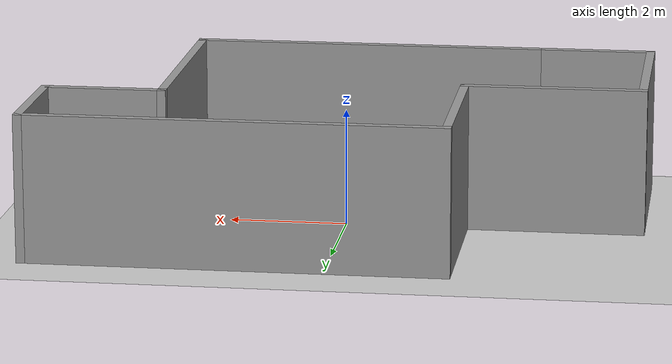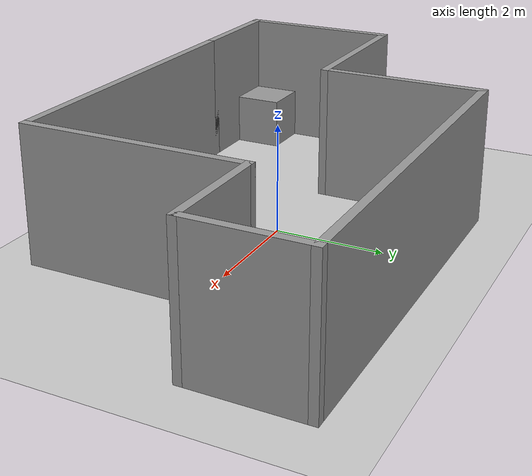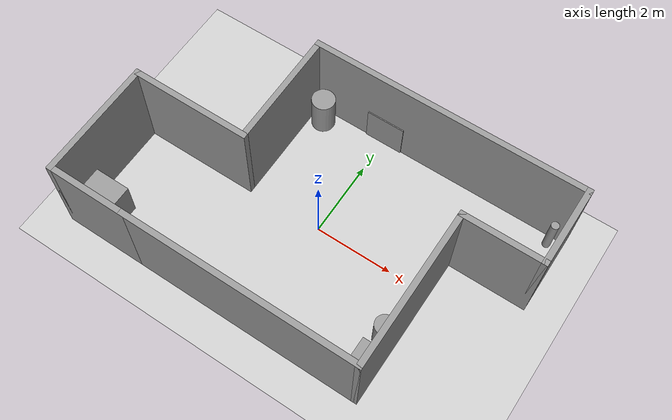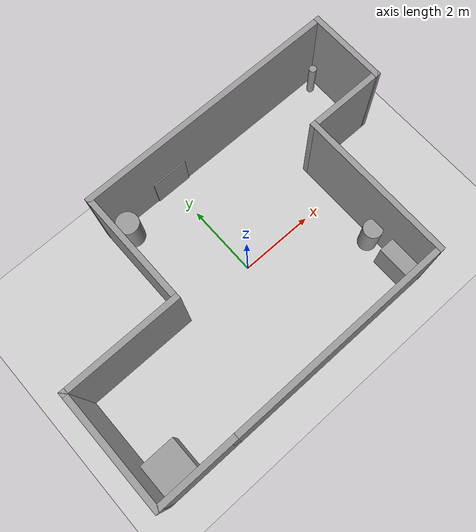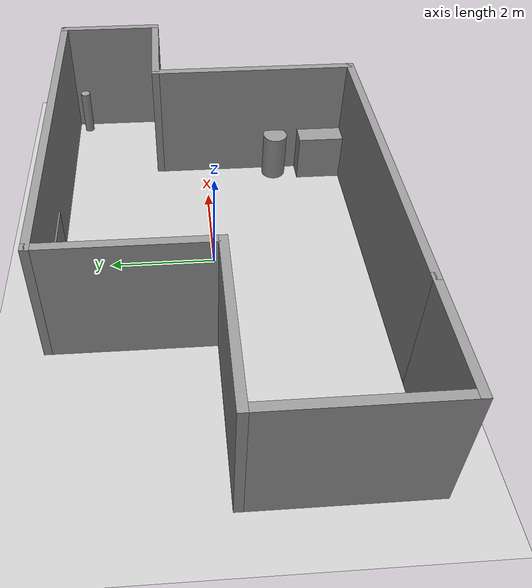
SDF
<sdf version="1.6">
 <world name="default">
  <light name="sun" type="directional">
   <pose>0 0 10 0 -0 0</pose>
   <diffuse>0.8 0.8 0.8 1</diffuse>
   <specular>0.2 0.2 0.2 1</specular>
   <attenuation>
    <range>1000</range>
    <constant>0.9</constant>
    <linear>0.01</linear>
    <quadratic>0.001</quadratic>
   </attenuation>
   <direction>-0.5 0.1 -0.9</direction>
  </light>
  <model name="ground_plane">
   <static>1</static>
   <link name="link">
    <collision name="collision">
     <geometry><plane><normal>0 0 1</normal><size>100 100</size></plane></geometry>
     <surface>
      <contact><collide_bitmask>65535</collide_bitmask></contact>
      <friction><ode><mu>100</mu><mu2>50</mu2></ode></friction>
     </surface>
    </collision>
    <visual name="visual">
     <cast_shadows>0</cast_shadows>
     <geometry><plane><normal>0 0 1</normal><size>100 100</size></plane></geometry>
     <material>
      <script><uri>file://media/materials/scripts/gazebo.material</uri><name>Gazebo/Grey</name></script>
     </material>
    </visual>
   </link>
  </model>
  <gravity>0 0 -9.8</gravity>
  <magnetic_field>6e-06 2.3e-05 -4.2e-05</magnetic_field>
  <atmosphere type="adiabatic"/>
  <physics name="default_physics" default="0" type="ode">
   <max_step_size>0.001</max_step_size>
   <real_time_factor>1</real_time_factor>
   <real_time_update_rate>1000</real_time_update_rate>
  </physics>
  <scene><ambient>0.4 0.4 0.4 1</ambient><background>0.7 0.7 0.7 1</background><shadows>1</shadows></scene>
  <spherical_coordinates>
   <surface_model>EARTH_WGS84</surface_model>
   <latitude_deg>0</latitude_deg>
   <longitude_deg>0</longitude_deg>
   <elevation>0</elevation>
   <heading_deg>0</heading_deg>
  </spherical_coordinates>
  <model name="detailed_room">
   <static>1</static>
   <link name="link_1">
    <pose>2.16564 -2.75019 0.071429 0 -0 0</pose>
    <inertial>
     <mass>1</mass>
     <inertia>
      <ixx>0.166667</ixx>
      <ixy>0</ixy>
      <ixz>0</ixz>
      <iyy>0.166667</iyy>
      <iyz>0</iyz>
      <izz>0.166667</izz>
     </inertia>
    </inertial>
    <visual name="visual">
     <geometry><box><size>0.5 1 1</size></box></geometry>
     <material>
      <lighting>1</lighting>
      <script><uri>file://media/materials/scripts/gazebo.material</uri><name>Gazebo/Grey</name></script>
      <shader type="pixel"><normal_map>__default__</normal_map></shader>
      <ambient>0.3 0.3 0.3 1</ambient>
      <diffuse>0.7 0.7 0.7 1</diffuse>
      <specular>0.01 0.01 0.01 1</specular>
      <emissive>0 0 0 1</emissive>
     </material>
    </visual>
    <collision name="collision">
     <geometry><box><size>0.5 1 1</size></box></geometry>
     <surface>
      <friction>
       <ode><mu>1</mu><mu2>1</mu2><fdir1>0 0 0</fdir1><slip1>0</slip1><slip2>0</slip2></ode>
       <torsional>
        <coefficient>1</coefficient>
        <patch_radius>0</patch_radius>
        <surface_radius>0</surface_radius>
        <use_patch_radius>1</use_patch_radius>
        <ode><slip>0</slip></ode>
       </torsional>
      </friction>
      <bounce><restitution_coefficient>0</restitution_coefficient><threshold>1e+06</threshold></bounce>
      <contact>
       <collide_without_contact>0</collide_without_contact>
       <collide_without_contact_bitmask>1</collide_without_contact_bitmask>
       <collide_bitmask>1</collide_bitmask>
       <ode>
        <soft_cfm>0</soft_cfm>
        <soft_erp>0.2</soft_erp>
        <kp>1e+13</kp>
        <kd>1</kd>
        <max_vel>0.01</max_vel>
        <min_depth>0</min_depth>
       </ode>
       <bullet>
        <split_impulse>1</split_impulse>
        <split_impulse_penetration_threshold>-0.01</split_impulse_penetration_threshold>
        <soft_cfm>0</soft_cfm>
        <soft_erp>0.2</soft_erp>
        <kp>1e+13</kp>
        <kd>1</kd>
       </bullet>
      </contact>
     </surface>
    </collision>
   </link>
   <link name="link_2">
    <pose>2.16564 -1.75019 0.071429 0 -0 0</pose>
    <inertial>
     <mass>1</mass>
     <inertia><ixx>0.145833</ixx><ixy>0</ixy><ixz>0</ixz><iyy>0.145833</iyy><iyz>0</iyz><izz>0.125</izz></inertia>
    </inertial>
    <visual name="visual">
     <geometry><cylinder><radius>0.25</radius><length>1</length></cylinder></geometry>
     <material>
      <lighting>1</lighting>
      <script><uri>file://media/materials/scripts/gazebo.material</uri><name>Gazebo/Grey</name></script>
      <shader type="pixel"><normal_map>__default__</normal_map></shader>
      <ambient>0.3 0.3 0.3 1</ambient>
      <diffuse>0.7 0.7 0.7 1</diffuse>
      <specular>0.01 0.01 0.01 1</specular>
      <emissive>0 0 0 1</emissive>
     </material>
    </visual>
    <collision name="collision">
     <geometry><cylinder><radius>0.25</radius><length>1</length></cylinder></geometry>
     <surface>
      <friction>
       <ode><mu>1</mu><mu2>1</mu2><fdir1>0 0 0</fdir1><slip1>0</slip1><slip2>0</slip2></ode>
       <torsional>
        <coefficient>1</coefficient>
        <patch_radius>0</patch_radius>
        <surface_radius>0</surface_radius>
        <use_patch_radius>1</use_patch_radius>
        <ode><slip>0</slip></ode>
       </torsional>
      </friction>
      <bounce><restitution_coefficient>0</restitution_coefficient><threshold>1e+06</threshold></bounce>
      <contact>
       <collide_without_contact>0</collide_without_contact>
       <collide_without_contact_bitmask>1</collide_without_contact_bitmask>
       <collide_bitmask>1</collide_bitmask>
       <ode>
        <soft_cfm>0</soft_cfm>
        <soft_erp>0.2</soft_erp>
        <kp>1e+13</kp>
        <kd>1</kd>
        <max_vel>0.01</max_vel>
        <min_depth>0</min_depth>
       </ode>
       <bullet>
        <split_impulse>1</split_impulse>
        <split_impulse_penetration_threshold>-0.01</split_impulse_penetration_threshold>
        <soft_cfm>0</soft_cfm>
        <soft_erp>0.2</soft_erp>
        <kp>1e+13</kp>
        <kd>1</kd>
       </bullet>
      </contact>
     </surface>
    </collision>
   </link>
   <link name="link_3">
    <pose>4.11564 2.44981 0.071429 0 -0 0</pose>
    <inertial>
     <mass>1</mass>
     <inertia><ixx>0.145833</ixx><ixy>0</ixy><ixz>0</ixz><iyy>0.145833</iyy><iyz>0</iyz><izz>0.125</izz></inertia>
    </inertial>
    <visual name="visual">
     <geometry><cylinder><radius>0.1</radius><length>1</length></cylinder></geometry>
     <material>
      <lighting>1</lighting>
      <script><uri>file://media/materials/scripts/gazebo.material</uri><name>Gazebo/Grey</name></script>
      <shader type="pixel"><normal_map>__default__</normal_map></shader>
      <ambient>0.3 0.3 0.3 1</ambient>
      <diffuse>0.7 0.7 0.7 1</diffuse>
      <specular>0.01 0.01 0.01 1</specular>
      <emissive>0 0 0 1</emissive>
     </material>
    </visual>
    <collision name="collision">
     <geometry><cylinder><radius>0.1</radius><length>1</length></cylinder></geometry>
     <surface>
      <friction>
       <ode><mu>1</mu><mu2>1</mu2><fdir1>0 0 0</fdir1><slip1>0</slip1><slip2>0</slip2></ode>
       <torsional>
        <coefficient>1</coefficient>
        <patch_radius>0</patch_radius>
        <surface_radius>0</surface_radius>
        <use_patch_radius>1</use_patch_radius>
        <ode><slip>0</slip></ode>
       </torsional>
      </friction>
      <bounce><restitution_coefficient>0</restitution_coefficient><threshold>1e+06</threshold></bounce>
      <contact>
       <collide_without_contact>0</collide_without_contact>
       <collide_without_contact_bitmask>1</collide_without_contact_bitmask>
       <collide_bitmask>1</collide_bitmask>
       <ode>
        <soft_cfm>0</soft_cfm>
        <soft_erp>0.2</soft_erp>
        <kp>1e+13</kp>
        <kd>1</kd>
        <max_vel>0.01</max_vel>
        <min_depth>0</min_depth>
       </ode>
       <bullet>
        <split_impulse>1</split_impulse>
        <split_impulse_penetration_threshold>-0.01</split_impulse_penetration_threshold>
        <soft_cfm>0</soft_cfm>
        <soft_erp>0.2</soft_erp>
        <kp>1e+13</kp>
        <kd>1</kd>
       </bullet>
      </contact>
     </surface>
    </collision>
   </link>
   <link name="link_4">
    <pose>-2.18436 2.34981 0.071429 0 -0 0</pose>
    <inertial>
     <mass>1</mass>
     <inertia><ixx>0.145833</ixx><ixy>0</ixy><ixz>0</ixz><iyy>0.145833</iyy><iyz>0</iyz><izz>0.125</izz></inertia>
    </inertial>
    <visual name="visual">
     <geometry><cylinder><radius>0.3</radius><length>1</length></cylinder></geometry>
     <material>
      <lighting>1</lighting>
      <script><uri>file://media/materials/scripts/gazebo.material</uri><name>Gazebo/Grey</name></script>
      <shader type="pixel"><normal_map>__default__</normal_map></shader>
      <ambient>0.3 0.3 0.3 1</ambient>
      <diffuse>0.7 0.7 0.7 1</diffuse>
      <specular>0.01 0.01 0.01 1</specular>
      <emissive>0 0 0 1</emissive>
     </material>
    </visual>
    <collision name="collision">
     <geometry><cylinder><radius>0.3</radius><length>1</length></cylinder></geometry>
     <surface>
      <friction>
       <ode><mu>1</mu><mu2>1</mu2><fdir1>0 0 0</fdir1><slip1>0</slip1><slip2>0</slip2></ode>
       <torsional>
        <coefficient>1</coefficient>
        <patch_radius>0</patch_radius>
        <surface_radius>0</surface_radius>
        <use_patch_radius>1</use_patch_radius>
        <ode><slip>0</slip></ode>
       </torsional>
      </friction>
      <bounce><restitution_coefficient>0</restitution_coefficient><threshold>1e+06</threshold></bounce>
      <contact>
       <collide_without_contact>0</collide_without_contact>
       <collide_without_contact_bitmask>1</collide_without_contact_bitmask>
       <collide_bitmask>1</collide_bitmask>
       <ode>
        <soft_cfm>0</soft_cfm>
        <soft_erp>0.2</soft_erp>
        <kp>1e+13</kp>
        <kd>1</kd>
        <max_vel>0.01</max_vel>
        <min_depth>0</min_depth>
       </ode>
       <bullet>
        <split_impulse>1</split_impulse>
        <split_impulse_penetration_threshold>-0.01</split_impulse_penetration_threshold>
        <soft_cfm>0</soft_cfm>
        <soft_erp>0.2</soft_erp>
        <kp>1e+13</kp>
        <kd>1</kd>
       </bullet>
      </contact>
     </surface>
    </collision>
   </link>
   <link name="link_5">
    <pose>-5.08436 -2.75019 0.071429 0 -0 0</pose>
    <inertial>
     <mass>1</mass>
     <inertia>
      <ixx>0.166667</ixx>
      <ixy>0</ixy>
      <ixz>0</ixz>
      <iyy>0.166667</iyy>
      <iyz>0</iyz>
      <izz>0.166667</izz>
     </inertia>
    </inertial>
    <visual name="visual">
     <geometry><box><size>1 1 1</size></box></geometry>
     <material>
      <lighting>1</lighting>
      <script><uri>file://media/materials/scripts/gazebo.material</uri><name>Gazebo/Grey</name></script>
      <shader type="pixel"><normal_map>__default__</normal_map></shader>
      <ambient>0.3 0.3 0.3 1</ambient>
      <diffuse>0.7 0.7 0.7 1</diffuse>
      <specular>0.01 0.01 0.01 1</specular>
      <emissive>0 0 0 1</emissive>
     </material>
    </visual>
    <collision name="collision">
     <geometry><box><size>1 1 1</size></box></geometry>
     <surface>
      <friction>
       <ode><mu>1</mu><mu2>1</mu2><fdir1>0 0 0</fdir1><slip1>0</slip1><slip2>0</slip2></ode>
       <torsional>
        <coefficient>1</coefficient>
        <patch_radius>0</patch_radius>
        <surface_radius>0</surface_radius>
        <use_patch_radius>1</use_patch_radius>
        <ode><slip>0</slip></ode>
       </torsional>
      </friction>
      <bounce><restitution_coefficient>0</restitution_coefficient><threshold>1e+06</threshold></bounce>
      <contact>
       <collide_without_contact>0</collide_without_contact>
       <collide_without_contact_bitmask>1</collide_without_contact_bitmask>
       <collide_bitmask>1</collide_bitmask>
       <ode>
        <soft_cfm>0</soft_cfm>
        <soft_erp>0.2</soft_erp>
        <kp>1e+13</kp>
        <kd>1</kd>
        <max_vel>0.01</max_vel>
        <min_depth>0</min_depth>
       </ode>
       <bullet>
        <split_impulse>1</split_impulse>
        <split_impulse_penetration_threshold>-0.01</split_impulse_penetration_threshold>
        <soft_cfm>0</soft_cfm>
        <soft_erp>0.2</soft_erp>
        <kp>1e+13</kp>
        <kd>1</kd>
       </bullet>
      </contact>
     </surface>
    </collision>
   </link>
   <link name="link_6">
    <pose>-0.584361 2.69981 0.071429 0 -0 0</pose>
    <inertial>
     <mass>1</mass>
     <inertia>
      <ixx>0.166667</ixx>
      <ixy>0</ixy>
      <ixz>0</ixz>
      <iyy>0.166667</iyy>
      <iyz>0</iyz>
      <izz>0.166667</izz>
     </inertia>
    </inertial>
    <visual name="visual">
     <geometry><box><size>1 0.1 1</size></box></geometry>
     <material>
      <lighting>1</lighting>
      <script><uri>file://media/materials/scripts/gazebo.material</uri><name>Gazebo/Grey</name></script>
      <shader type="pixel"><normal_map>__default__</normal_map></shader>
      <ambient>0.3 0.3 0.3 1</ambient>
      <diffuse>0.7 0.7 0.7 1</diffuse>
      <specular>0.01 0.01 0.01 1</specular>
      <emissive>0 0 0 1</emissive>
     </material>
    </visual>
    <collision name="collision">
     <geometry><box><size>1 0.1 1</size></box></geometry>
     <surface>
      <friction>
       <ode><mu>1</mu><mu2>1</mu2><fdir1>0 0 0</fdir1><slip1>0</slip1><slip2>0</slip2></ode>
       <torsional>
        <coefficient>1</coefficient>
        <patch_radius>0</patch_radius>
        <surface_radius>0</surface_radius>
        <use_patch_radius>1</use_patch_radius>
        <ode><slip>0</slip></ode>
       </torsional>
      </friction>
      <bounce><restitution_coefficient>0</restitution_coefficient><threshold>1e+06</threshold></bounce>
      <contact>
       <collide_without_contact>0</collide_without_contact>
       <collide_without_contact_bitmask>1</collide_without_contact_bitmask>
       <collide_bitmask>1</collide_bitmask>
       <ode>
        <soft_cfm>0</soft_cfm>
        <soft_erp>0.2</soft_erp>
        <kp>1e+13</kp>
        <kd>1</kd>
        <max_vel>0.01</max_vel>
        <min_depth>0</min_depth>
       </ode>
       <bullet>
        <split_impulse>1</split_impulse>
        <split_impulse_penetration_threshold>-0.01</split_impulse_penetration_threshold>
        <soft_cfm>0</soft_cfm>
        <soft_erp>0.2</soft_erp>
        <kp>1e+13</kp>
        <kd>1</kd>
       </bullet>
      </contact>
     </surface>
    </collision>
   </link>
   <model name="simple_walls">
    <pose>-0.593835 -0.248848 -0.428571 0 -0 0</pose>
    <link name="Wall_10">
     <collision name="Wall_10_Collision">
      <geometry><box><size>3.15 0.15 2.5</size></box></geometry>
      <pose>0 0 1.25 0 -0 0</pose>
     </collision>
     <visual name="Wall_10_Visual">
      <pose>0 0 1.25 0 -0 0</pose>
      <geometry><box><size>3.15 0.15 2.5</size></box></geometry>
      <material>
       <script><uri>file://media/materials/scripts/gazebo.material</uri><name>Gazebo/Grey</name></script>
       <ambient>1 1 1 1</ambient>
      </material>
      <meta><layer>0</layer></meta>
     </visual>
     <pose>-2.00003 1.5 0 0 0 -1.5708</pose>
    </link>
    <link name="Wall_11">
     <collision name="Wall_11_Collision">
      <geometry><box><size>3.15 0.15 2.5</size></box></geometry>
      <pose>0 0 1.25 0 -0 0</pose>
     </collision>
     <visual name="Wall_11_Visual">
      <pose>0 0 1.25 0 -0 0</pose>
      <geometry><box><size>3.15 0.15 2.5</size></box></geometry>
      <material>
       <script><uri>file://media/materials/scripts/gazebo.material</uri><name>Gazebo/Grey</name></script>
       <ambient>1 1 1 1</ambient>
      </material>
      <meta><layer>0</layer></meta>
     </visual>
     <pose>-3.50003 0 0 0 -0 3.14159</pose>
    </link>
    <link name="Wall_12">
     <collision name="Wall_12_Collision">
      <geometry><box><size>3.15 0.15 2.5</size></box></geometry>
      <pose>0 0 1.25 0 -0 0</pose>
     </collision>
     <visual name="Wall_12_Visual">
      <pose>0 0 1.25 0 -0 0</pose>
      <geometry><box><size>3.15 0.15 2.5</size></box></geometry>
      <material>
       <script><uri>file://media/materials/scripts/gazebo.material</uri><name>Gazebo/Grey</name></script>
       <ambient>1 1 1 1</ambient>
      </material>
      <meta><layer>0</layer></meta>
     </visual>
     <pose>-5.00003 -1.5 0 0 0 -1.5708</pose>
    </link>
    <link name="Wall_13">
     <collision name="Wall_13_Collision">
      <geometry><box><size>2.15 0.15 2.5</size></box></geometry>
      <pose>0 0 1.25 0 -0 0</pose>
     </collision>
     <visual name="Wall_13_Visual">
      <pose>0 0 1.25 0 -0 0</pose>
      <geometry><box><size>2.15 0.15 2.5</size></box></geometry>
      <material>
       <script><uri>file://media/materials/scripts/gazebo.material</uri><name>Gazebo/Grey</name></script>
       <ambient>1 1 1 1</ambient>
      </material>
      <meta><layer>0</layer></meta>
     </visual>
     <pose>-4.00003 -3 0 0 -0 0</pose>
    </link>
    <link name="Wall_2">
     <collision name="Wall_2_Collision">
      <geometry><box><size>6.15 0.15 2.5</size></box></geometry>
      <pose>0 0 1.25 0 -0 0</pose>
     </collision>
     <visual name="Wall_2_Visual">
      <pose>0 0 1.25 0 -0 0</pose>
      <geometry><box><size>6.15 0.15 2.5</size></box></geometry>
      <material>
       <script><uri>file://media/materials/scripts/gazebo.material</uri><name>Gazebo/Grey</name></script>
       <ambient>1 1 1 1</ambient>
      </material>
      <meta><layer>0</layer></meta>
     </visual>
     <pose>-3.3e-05 -3 0 0 -0 0</pose>
    </link>
    <link name="Wall_3">
     <collision name="Wall_3_Collision">
      <geometry><box><size>4.15 0.15 2.5</size></box></geometry>
      <pose>0 0 1.25 0 -0 0</pose>
     </collision>
     <visual name="Wall_3_Visual">
      <pose>0 0 1.25 0 -0 0</pose>
      <geometry><box><size>4.15 0.15 2.5</size></box></geometry>
      <material>
       <script><uri>file://media/materials/scripts/gazebo.material</uri><name>Gazebo/Grey</name></script>
       <ambient>1 1 1 1</ambient>
      </material>
      <meta><layer>0</layer></meta>
     </visual>
     <pose>2.99997 -1 0 0 -0 1.5708</pose>
    </link>
    <link name="Wall_7">
     <collision name="Wall_7_Collision">
      <geometry><box><size>2.15013 0.15 2.5</size></box></geometry>
      <pose>0 0 1.25 0 -0 0</pose>
     </collision>
     <visual name="Wall_7_Visual">
      <pose>0 0 1.25 0 -0 0</pose>
      <geometry><box><size>2.15013 0.15 2.5</size></box></geometry>
      <material>
       <script><uri>file://media/materials/scripts/gazebo.material</uri><name>Gazebo/Grey</name></script>
       <ambient>1 1 1 1</ambient>
      </material>
      <meta><layer>0</layer></meta>
     </visual>
     <pose>3.99997 1 0 0 -0 0</pose>
    </link>
    <link name="Wall_8">
     <collision name="Wall_8_Collision">
      <geometry><box><size>2.15 0.15 2.5</size></box></geometry>
      <pose>0 0 1.25 0 -0 0</pose>
     </collision>
     <visual name="Wall_8_Visual">
      <pose>0 0 1.25 0 -0 0</pose>
      <geometry><box><size>2.15 0.15 2.5</size></box></geometry>
      <material>
       <script><uri>file://media/materials/scripts/gazebo.material</uri><name>Gazebo/Grey</name></script>
       <ambient>1 1 1 1</ambient>
      </material>
      <meta><layer>0</layer></meta>
     </visual>
     <pose>4.99997 2 0 0 -0 1.5708</pose>
    </link>
    <link name="Wall_9">
     <collision name="Wall_9_Collision">
      <geometry><box><size>7.15 0.15 2.5</size></box></geometry>
      <pose>0 0 1.25 0 -0 0</pose>
     </collision>
     <visual name="Wall_9_Visual">
      <pose>0 0 1.25 0 -0 0</pose>
      <geometry><box><size>7.15 0.15 2.5</size></box></geometry>
      <material>
       <script><uri>file://media/materials/scripts/gazebo.material</uri><name>Gazebo/Grey</name></script>
       <ambient>1 1 1 1</ambient>
      </material>
      <meta><layer>0</layer></meta>
     </visual>
     <pose>1.49997 3 0 0 -0 3.14159</pose>
    </link>
    <static>1</static>
   </model>
   <static>0</static>
   <pose>0.584361 0.250192 0.428571 0 -0 0</pose>
  </model>
 </world>
</sdf>
